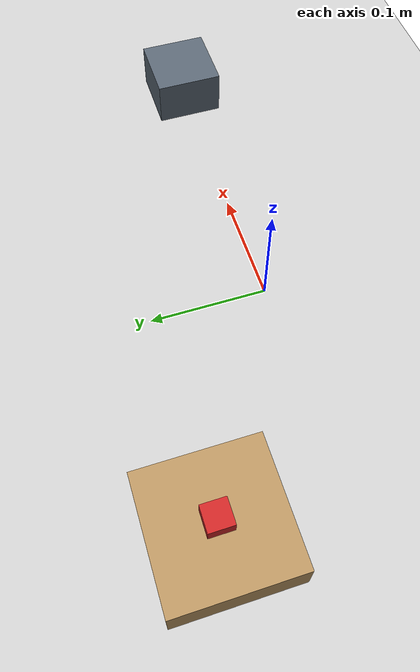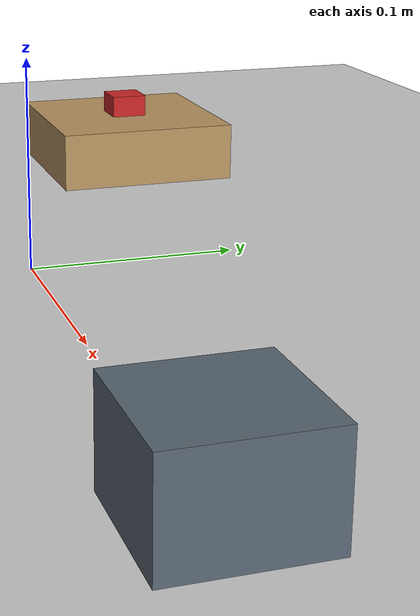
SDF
<?xml version="1.0" ?>
<!-- Mundo unico donde spawnean las tres estaciones. Por ahora solo suelo y luz;
     los modelos se anaden a medida que cada estacion tenga su URDF. -->
<sdf version="1.10">
  <world name="line">

    <physics name="1ms" type="ignored">
      <max_step_size>0.001</max_step_size>
      <real_time_factor>1.0</real_time_factor>
    </physics>

    <plugin filename="gz-sim-physics-system"
            name="gz::sim::systems::Physics"/>
    <plugin filename="gz-sim-user-commands-system"
            name="gz::sim::systems::UserCommands"/>
    <plugin filename="gz-sim-scene-broadcaster-system"
            name="gz::sim::systems::SceneBroadcaster"/>

    <light type="directional" name="sun">
      <cast_shadows>true</cast_shadows>
      <pose>0 0 10 0 0 0</pose>
      <diffuse>0.8 0.8 0.8 1</diffuse>
      <specular>0.2 0.2 0.2 1</specular>
      <direction>-0.5 0.1 -0.9</direction>
    </light>

    <model name="ground_plane">
      <static>true</static>
      <link name="link">
        <collision name="collision">
          <geometry><plane><normal>0 0 1</normal><size>10 10</size></plane></geometry>
        </collision>
        <visual name="visual">
          <geometry><plane><normal>0 0 1</normal><size>10 10</size></plane></geometry>
          <material>
            <ambient>0.8 0.8 0.8 1</ambient>
            <diffuse>0.8 0.8 0.8 1</diffuse>
          </material>
        </visual>
      </link>
    </model>

    <model name="bandeja_e1">
      <static>true</static>
      <pose>-0.180 0.100 0.016 0 0 0</pose>
      <link name="superficie">
        <collision name="collision">
          <geometry><box><size>0.100 0.100 0.032</size></box></geometry>
        </collision>
        <visual name="visual">
          <geometry><box><size>0.100 0.100 0.032</size></box></geometry>
          <material>
            <ambient>0.72 0.58 0.38 1</ambient>
            <diffuse>0.72 0.58 0.38 1</diffuse>
          </material>
        </visual>
      </link>
    </model>

    <model name="soporte_traspaso_1_2">
      <static>true</static>
      <pose>0.250 0.000 0.021 0 0 0</pose>
      <link name="superficie">
        <collision name="collision">
          <geometry><box><size>0.060 0.060 0.042</size></box></geometry>
        </collision>
        <visual name="visual">
          <geometry><box><size>0.060 0.060 0.042</size></box></geometry>
          <material>
            <ambient>0.35 0.40 0.45 1</ambient>
            <diffuse>0.35 0.40 0.45 1</diffuse>
          </material>
        </visual>
      </link>
    </model>

    <model name="pieza">
      <pose>-0.180 0.100 0.038 0 0 0</pose>
      <link name="cuerpo">
        <inertial>
          <mass>0.0200</mass>
          <inertia>
            <ixx>9.067e-07</ixx><iyy>9.067e-07</iyy><izz>1.333e-06</izz>
            <ixy>0</ixy><ixz>0</ixz><iyz>0</iyz>
          </inertia>
        </inertial>
        <collision name="collision">
          <geometry><box><size>0.020 0.020 0.012</size></box></geometry>
          <surface>
            <friction><ode><mu>0.9</mu><mu2>0.9</mu2></ode></friction>
          </surface>
        </collision>
        <visual name="visual">
          <geometry><box><size>0.020 0.020 0.012</size></box></geometry>
          <material>
            <ambient>0.80 0.15 0.15 1</ambient>
            <diffuse>0.80 0.15 0.15 1</diffuse>
          </material>
        </visual>
      </link>
    </model>

    <gui fullscreen="1">
      <plugin filename="MinimalScene" name="3D View">
        <gz-gui>
          <title>3D View</title>
          <property type="bool" key="showTitleBar">false</property>
          <property type="string" key="state">docked</property>
        </gz-gui>
        <engine>ogre2</engine>
        <scene>scene</scene>
        <ambient_light>0.4 0.4 0.4</ambient_light>
        <background_color>0.85 0.87 0.90</background_color>
        <camera_pose>0.30 -0.38 0.30 0 0.410 2.159</camera_pose>
      </plugin>
      <plugin filename="GzSceneManager" name="Scene Manager">
        <gz-gui><property key="resizable" type="bool">false</property>
          <property key="width" type="double">5</property>
          <property key="height" type="double">5</property>
          <property key="showTitleBar" type="bool">false</property>
          <property key="state" type="string">floating</property></gz-gui>
      </plugin>
      <plugin filename="InteractiveViewControl" name="Interactive view control">
        <gz-gui><property key="resizable" type="bool">false</property>
          <property key="width" type="double">5</property>
          <property key="height" type="double">5</property>
          <property key="showTitleBar" type="bool">false</property>
          <property key="state" type="string">floating</property></gz-gui>
      </plugin>
      <plugin filename="CameraTracking" name="Camera Tracking">
        <gz-gui><property key="resizable" type="bool">false</property>
          <property key="width" type="double">5</property>
          <property key="height" type="double">5</property>
          <property key="showTitleBar" type="bool">false</property>
          <property key="state" type="string">floating</property></gz-gui>
      </plugin>
      <plugin filename="WorldControl" name="World control">
        <gz-gui>
          <title>World control</title>
          <property type="bool" key="showTitleBar">false</property>
          <property type="string" key="state">floating</property>
          <property type="double" key="height">72</property>
          <property type="double" key="width">121</property>
          <property type="double" key="z">1</property>
          <anchors target="3D View">
            <line own="left" target="left"/>
            <line own="bottom" target="bottom"/>
          </anchors>
        </gz-gui>
        <play_pause>true</play_pause>
        <step>true</step>
        <start_paused>false</start_paused>
      </plugin>
      <plugin filename="WorldStats" name="World stats">
        <gz-gui>
          <title>World stats</title>
          <property type="bool" key="showTitleBar">false</property>
          <property type="string" key="state">floating</property>
          <property type="double" key="height">110</property>
          <property type="double" key="width">290</property>
          <property type="double" key="z">1</property>
          <anchors target="3D View">
            <line own="right" target="right"/>
            <line own="bottom" target="bottom"/>
          </anchors>
        </gz-gui>
        <sim_time>true</sim_time>
        <real_time>true</real_time>
        <real_time_factor>true</real_time_factor>
      </plugin>
      <plugin filename="EntityContextMenuPlugin" name="Entity context menu">
        <gz-gui><property key="resizable" type="bool">false</property>
          <property key="width" type="double">5</property>
          <property key="height" type="double">5</property>
          <property key="showTitleBar" type="bool">false</property>
          <property key="state" type="string">floating</property></gz-gui>
      </plugin>
    </gui>

  </world>
</sdf>
